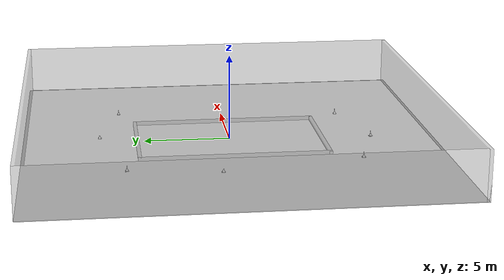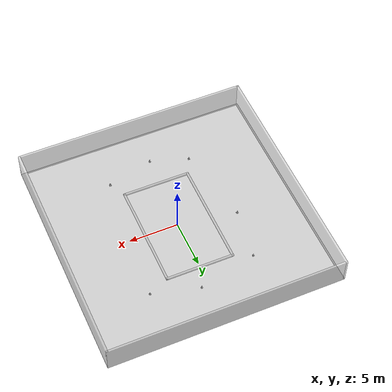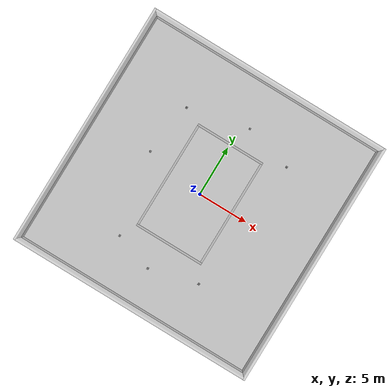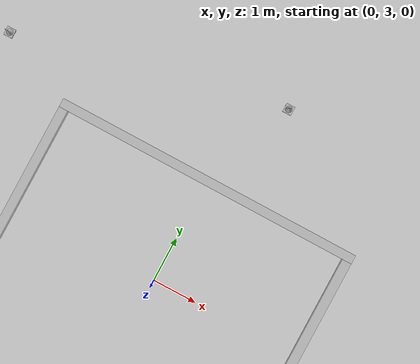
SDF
<?xml version="1.0"?>
<sdf version="1.4">
<world name="medium_track">

  <scene>
    <ambient>0.5 0.5 0.5 1.0</ambient>
    <shadows>0</shadows>
  </scene>

  <include>
    <uri>model://sun</uri>
    <pose>0.0 0.0 15.0 0 0 0</pose>
    <cast_shadows>false</cast_shadows>
    <attenuation>
      <constant>0.5</constant>
      <linear>0.01</linear>
      <quadratic>0.0</quadratic>
      <range>100</range>
    </attenuation>
  </include>

  <light type="point" name="Light 1">
         <pose>0 0 15 0 0 0</pose>
         <diffuse>.9 .9 .9 1</diffuse>
         <specular>.1 .1 .1 1</specular>
         <attenuation>
                <constant>0.4</constant>
                <linear>0.0</linear>
                <quadratic>0.02</quadratic>
                <range>50</range>
         </attenuation>
         <direction>0 0 -1</direction>
         <cast_shadows>false</cast_shadows>
  </light>

  <include>
    <uri>model://sim_world/models//medium_track_plane_large</uri>
    <pose>0 0 0 0 0 0</pose>
    <name>racetrack</name>
  </include>

  <include>
    <name>cone_A</name>
    <uri>model://sim_world/models/sankaku_cone_A</uri>
    <static>true</static>
    <pose>5.53 6.32 0 0 0 0</pose>
  </include>
  <include>
    <name>cone_B</name>
    <uri>model://sim_world/models/sankaku_cone_B</uri>
    <static>true</static>
    <pose>0.8 7.57 0 0 0 0</pose>
  </include>
  <include>
    <name>cone_C</name>
    <uri>model://sim_world/models/sankaku_cone_C</uri>
    <static>true</static>
    <pose>-5.2 6.2 0 0 0 0</pose>
  </include>
  <include>
    <name>cone_D</name>
    <uri>model://sim_world/models/sankaku_cone_D</uri>
    <static>true</static>
    <pose>-5.95 1 0 0 0 0</pose>
  </include>
  <include>
    <name>cone_E</name>
    <uri>model://sim_world/models/sankaku_cone_E</uri>
    <static>true</static>
    <pose>-4.3 -7.1 0 0 0 0</pose>
  </include>
  <include>
    <name>cone_F</name>
    <uri>model://sim_world/models/sankaku_cone_F</uri>
    <static>true</static>
    <pose>-0.51 -8.33 0 0 0 0</pose>
  </include>
  <include>
    <name>cone_G</name>
    <uri>model://sim_world/models/sankaku_cone_G</uri>
    <static>true</static>
    <pose>4.26 -7.1 0 0 0 0</pose>
  </include>

    <include>
      <name>right_wall</name>
      <uri>model://sim_world/models/transparent_wall_24m</uri>
      <static>true</static>
      <pose>11.9 0 0 0 0 0</pose>
    </include>
    <include>
      <name>left_wall</name>
      <uri>model://sim_world/models/transparent_wall_24m</uri>
      <static>true</static>
      <pose>-11.9 0 0 0 0 0</pose>
    </include>
    <include>
      <name>upper_wall</name>
      <uri>model://sim_world/models/transparent_wall_24m</uri>
      <static>true</static>
      <pose>0 11.9 0 0 0 1.5708</pose>
    </include>
    <include>
      <name>lower_wall</name>
      <uri>model://sim_world/models/transparent_wall_24m</uri>
      <static>true</static>
      <pose>0 -11.9 0 0 0 1.5708</pose>
    </include>

    <include>
      <name>upper_wood</name>
      <uri>model://sim_world/models/transparent_block_700_20_20cm</uri>
      <static>true</static>
      <pose>0 5.4 0 0 0 0</pose>
    </include>
    <include>
      <name>lower_wood</name>
      <uri>model://sim_world/models/transparent_block_700_20_20cm</uri>
      <static>true</static>
      <pose>0 -5.4 0 0 0 0</pose>
    </include>
    <include>
      <name>right_wood</name>
      <uri>model://sim_world/models/transparent_block_1100_20_20cm</uri>
      <static>true</static>
      <pose>3.4 0 0 0 0 1.5708</pose>
    </include>
    <include>
      <name>left_wood</name>
      <uri>model://sim_world/models/transparent_block_1100_20_20cm</uri>
      <static>true</static>
      <pose>-3.4 0 0 0 0 1.5708</pose>
    </include>

</world>
</sdf>

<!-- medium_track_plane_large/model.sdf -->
<sdf version="1.4">
<model name="medium_track">
  <static>true</static>
    <link name="link">
      <collision name="collision">
        <geometry>
          <plane>
            <normal>0 0 1</normal>
            <size>100 100</size>
          </plane>
        </geometry>
        <surface>
          <friction>
            <ode>
              <mu>100</mu>
              <mu2>50</mu2>
            </ode>
          </friction>
        </surface>
      </collision>
      <visual name="visual">
        <cast_shadows>false</cast_shadows>
        <geometry>
          <plane>
            <normal>0 0 1</normal>
            <size>24 24</size>
          </plane>
        </geometry>
        <material>
		  <script>
		    <uri>model://sim_world/meshes/medium_track_plane_large/scripts</uri>
            <uri>model://sim_world/meshes/medium_track_plane_large/textures</uri>
            <name>medium_track/Image</name>
		  </script>
        </material>
      </visual>
    </link>
  </model>
</sdf>

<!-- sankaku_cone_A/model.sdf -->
<sdf version="1.4">
  <model name="cone_A">
    <static>true</static>
    <link name="link">
      <inertial>
        <pose>0 0 0 0 0 0</pose>
        <mass>1</mass>
        <inertia>
          <ixx>0.00055575</ixx>
          <ixy>0</ixy>
          <ixz>0</ixz>
          <iyy>0.00055575</iyy>
          <iyz>0</iyz>
          <izz>0.0001755</izz>
        </inertia>
      </inertial>
      <collision name="collision">
        <pose>0 0 0 0 0 0</pose>
        <geometry>
          <mesh>
            <uri>model://sankaku_cone_A/meshes/cone_with_coin_A.dae</uri>
            <scale>0.5 0.5 0.5</scale>
          </mesh>
        </geometry>
      </collision>
      <visual name="visual">
        <pose>0 0 0 0 0 0</pose>
        <geometry>
          <mesh>
            <uri>model://sankaku_cone_A/meshes/cone_with_coin_A.dae</uri>
           <scale>0.5 0.5 0.5</scale>
          </mesh>
        </geometry>
      </visual>
    </link>
  </model>
</sdf>

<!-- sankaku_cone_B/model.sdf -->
<sdf version="1.4">
  <model name="cone_B">
    <static>true</static>
    <link name="link">
      <inertial>
        <pose>0 0 0 0 0 0</pose>
        <mass>1</mass>
        <inertia>
          <ixx>0.00055575</ixx>
          <ixy>0</ixy>
          <ixz>0</ixz>
          <iyy>0.00055575</iyy>
          <iyz>0</iyz>
          <izz>0.0001755</izz>
        </inertia>
      </inertial>
      <collision name="collision">
        <pose>0 0 0 0 0 0</pose>
        <geometry>
          <mesh>
            <uri>model://sankaku_cone_B/meshes/cone_with_coin_B.dae</uri>
            <scale>0.5 0.5 0.5</scale>
          </mesh>
        </geometry>
      </collision>
      <visual name="visual">
        <pose>0 0 0 0 0 0</pose>
        <geometry>
          <mesh>
            <uri>model://sankaku_cone_B/meshes/cone_with_coin_B.dae</uri>
           <scale>0.5 0.5 0.5</scale>
          </mesh>
        </geometry>
      </visual>
    </link>
  </model>
</sdf>

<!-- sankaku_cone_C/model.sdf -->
<sdf version="1.4">
  <model name="cone_C">
    <static>true</static>
    <link name="link">
      <inertial>
        <pose>0 0 0 0 0 0</pose>
        <mass>1</mass>
        <inertia>
          <ixx>0.00055575</ixx>
          <ixy>0</ixy>
          <ixz>0</ixz>
          <iyy>0.00055575</iyy>
          <iyz>0</iyz>
          <izz>0.0001755</izz>
        </inertia>
      </inertial>
      <collision name="collision">
        <pose>0 0 0 0 0 0</pose>
        <geometry>
          <mesh>
            <uri>model://sankaku_cone_C/meshes/cone_with_coin_C.dae</uri>
            <scale>0.5 0.5 0.5</scale>
          </mesh>
        </geometry>
      </collision>
      <visual name="visual">
        <pose>0 0 0 0 0 0</pose>
        <geometry>
          <mesh>
            <uri>model://sankaku_cone_C/meshes/cone_with_coin_C.dae</uri>
           <scale>0.5 0.5 0.5</scale>
          </mesh>
        </geometry>
      </visual>
    </link>
  </model>
</sdf>

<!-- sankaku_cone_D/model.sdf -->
<sdf version="1.4">
  <model name="cone_D">
    <static>true</static>
    <link name="link">
      <inertial>
        <pose>0 0 0 0 0 0</pose>
        <mass>1</mass>
        <inertia>
          <ixx>0.00055575</ixx>
          <ixy>0</ixy>
          <ixz>0</ixz>
          <iyy>0.00055575</iyy>
          <iyz>0</iyz>
          <izz>0.0001755</izz>
        </inertia>
      </inertial>
      <collision name="collision">
        <pose>0 0 0 0 0 0</pose>
        <geometry>
          <mesh>
            <uri>model://sankaku_cone_D/meshes/cone_with_coin_D.dae</uri>
            <scale>0.5 0.5 0.5</scale>
          </mesh>
        </geometry>
      </collision>
      <visual name="visual">
        <pose>0 0 0 0 0 0</pose>
        <geometry>
          <mesh>
            <uri>model://sankaku_cone_D/meshes/cone_with_coin_D.dae</uri>
           <scale>0.5 0.5 0.5</scale>
          </mesh>
        </geometry>
      </visual>
    </link>
  </model>
</sdf>

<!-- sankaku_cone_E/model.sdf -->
<sdf version="1.4">
  <model name="cone_E">
    <static>true</static>
    <link name="link">
      <inertial>
        <pose>0 0 0 0 0 0</pose>
        <mass>1</mass>
        <inertia>
          <ixx>0.00055575</ixx>
          <ixy>0</ixy>
          <ixz>0</ixz>
          <iyy>0.00055575</iyy>
          <iyz>0</iyz>
          <izz>0.0001755</izz>
        </inertia>
      </inertial>
      <collision name="collision">
        <pose>0 0 0 0 0 0</pose>
        <geometry>
          <mesh>
            <uri>model://sankaku_cone_E/meshes/cone_with_coin_E.dae</uri>
            <scale>0.5 0.5 0.5</scale>
          </mesh>
        </geometry>
      </collision>
      <visual name="visual">
        <pose>0 0 0 0 0 0</pose>
        <geometry>
          <mesh>
            <uri>model://sankaku_cone_E/meshes/cone_with_coin_E.dae</uri>
           <scale>0.5 0.5 0.5</scale>
          </mesh>
        </geometry>
      </visual>
    </link>
  </model>
</sdf>

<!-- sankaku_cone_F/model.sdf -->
<sdf version="1.4">
  <model name="cone_F">
    <static>true</static>
    <link name="link">
      <inertial>
        <pose>0 0 0 0 0 0</pose>
        <mass>1</mass>
        <inertia>
          <ixx>0.00055575</ixx>
          <ixy>0</ixy>
          <ixz>0</ixz>
          <iyy>0.00055575</iyy>
          <iyz>0</iyz>
          <izz>0.0001755</izz>
        </inertia>
      </inertial>
      <collision name="collision">
        <pose>0 0 0 0 0 0</pose>
        <geometry>
          <mesh>
            <uri>model://sankaku_cone_F/meshes/cone_with_coin_F.dae</uri>
            <scale>0.5 0.5 0.5</scale>
          </mesh>
        </geometry>
      </collision>
      <visual name="visual">
        <pose>0 0 0 0 0 0</pose>
        <geometry>
          <mesh>
            <uri>model://sankaku_cone_F/meshes/cone_with_coin_F.dae</uri>
           <scale>0.5 0.5 0.5</scale>
          </mesh>
        </geometry>
      </visual>
    </link>
  </model>
</sdf>

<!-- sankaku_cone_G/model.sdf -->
<sdf version="1.4">
  <model name="cone_G">
    <static>true</static>
    <link name="link">
      <inertial>
        <pose>0 0 0 0 0 0</pose>
        <mass>1</mass>
        <inertia>
          <ixx>0.00055575</ixx>
          <ixy>0</ixy>
          <ixz>0</ixz>
          <iyy>0.00055575</iyy>
          <iyz>0</iyz>
          <izz>0.0001755</izz>
        </inertia>
      </inertial>
      <collision name="collision">
        <pose>0 0 0 0 0 0</pose>
        <geometry>
          <mesh>
            <uri>model://sankaku_cone_G/meshes/cone_with_coin_G.dae</uri>
            <scale>0.5 0.5 0.5</scale>
          </mesh>
        </geometry>
      </collision>
      <visual name="visual">
        <pose>0 0 0 0 0 0</pose>
        <geometry>
          <mesh>
            <uri>model://sankaku_cone_G/meshes/cone_with_coin_G.dae</uri>
           <scale>0.5 0.5 0.5</scale>
          </mesh>
        </geometry>
      </visual>
    </link>
  </model>
</sdf>

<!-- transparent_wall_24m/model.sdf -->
<sdf version="1.5">
  <model name="white_wall">
    <static>true</static>
    <link name="link">
      <pose>0 0 1.4 0 0 0</pose>
      <collision name="collision">
        <geometry>
          <box>
            <size>0.2 24.0 2.8</size>
          </box>
        </geometry>
      </collision>

      <visual name="visual">
        <geometry>
          <box>
            <size>0.2 24.0 2.8</size>
          </box>
        </geometry>
        <material>
          <script>
 		        <uri>model://sim_world/meshes/transparent/scripts</uri>
            <uri>model://sim_world/meshes/transparent/textures</uri>
            <name>vrc/transparent</name>
         </script>
        </material>
      </visual>

    </link>
  </model>
</sdf>

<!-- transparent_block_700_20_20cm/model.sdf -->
<sdf version="1.5">
  <model name="wood_block_144_10_10cm">
    <static>true</static>
    <link name="link">
      <pose>0 0 0.05 0 0 0</pose>

      <inertial>
        <mass>1000</mass>
      </inertial>

      <collision name="collision">
        <geometry>
          <box>
            <size>7.0 0.2 0.2</size>
          </box>
        </geometry>
        <surface>
          <contact>
            <!-- Red Pine coefficients for longitudinal axis of the wood
                 according to:
                 http://www.fpl.fs.fed.us/documnts/fplgtr/fplgtr113/ch04.pdf -->

            <poissons_ratio>0.347</poissons_ratio>
            <elastic_modulus>8.8e+09</elastic_modulus>
            <ode>
              <kp>100000</kp>
              <kd>1</kd>
              <max_vel>1.0</max_vel>
              <min_depth>0.001</min_depth>
            </ode>
          </contact>
          <friction>
            <torsional>
              <coefficient>1.0</coefficient>
              <use_patch_radius>0</use_patch_radius>
              <surface_radius>0.05</surface_radius>
            </torsional>
          </friction>
        </surface>
      </collision>

      <visual name="visual">
        <geometry>
          <box>
            <size>7.0 0.2 0.2</size>
          </box>
        </geometry>
        <material>
          <script>
 		        <uri>model://sim_world/meshes/transparent/scripts</uri>
            <uri>model://sim_world/meshes/transparent/textures</uri>
            <name>vrc/transparent</name>
         </script>
        </material>
      </visual>

    </link>
  </model>
</sdf>

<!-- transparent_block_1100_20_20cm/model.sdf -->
<sdf version="1.5">
  <model name="wood_block_144_10_10cm">
    <static>true</static>
    <link name="link">
      <pose>0 0 0.05 0 0 0</pose>

      <inertial>
        <mass>1000</mass>
      </inertial>

      <collision name="collision">
        <geometry>
          <box>
            <size>11.00 0.2 0.2</size>
          </box>
        </geometry>
        <surface>
          <contact>
            <!-- Red Pine coefficients for longitudinal axis of the wood
                 according to:
                 http://www.fpl.fs.fed.us/documnts/fplgtr/fplgtr113/ch04.pdf -->

            <poissons_ratio>0.347</poissons_ratio>
            <elastic_modulus>8.8e+09</elastic_modulus>
            <ode>
              <kp>100000</kp>
              <kd>1</kd>
              <max_vel>1.0</max_vel>
              <min_depth>0.001</min_depth>
            </ode>
          </contact>
          <friction>
            <torsional>
              <coefficient>1.0</coefficient>
              <use_patch_radius>0</use_patch_radius>
              <surface_radius>0.05</surface_radius>
            </torsional>
          </friction>
        </surface>
      </collision>

      <visual name="visual">
        <geometry>
          <box>
            <size>11.0 0.2 0.2</size>
          </box>
        </geometry>
        <material>
          <script>
 		        <uri>model://sim_world/meshes/transparent/scripts</uri>
            <uri>model://sim_world/meshes/transparent/textures</uri>
            <name>vrc/transparent</name>
         </script>
        </material>
      </visual>

    </link>
  </model>
</sdf>
